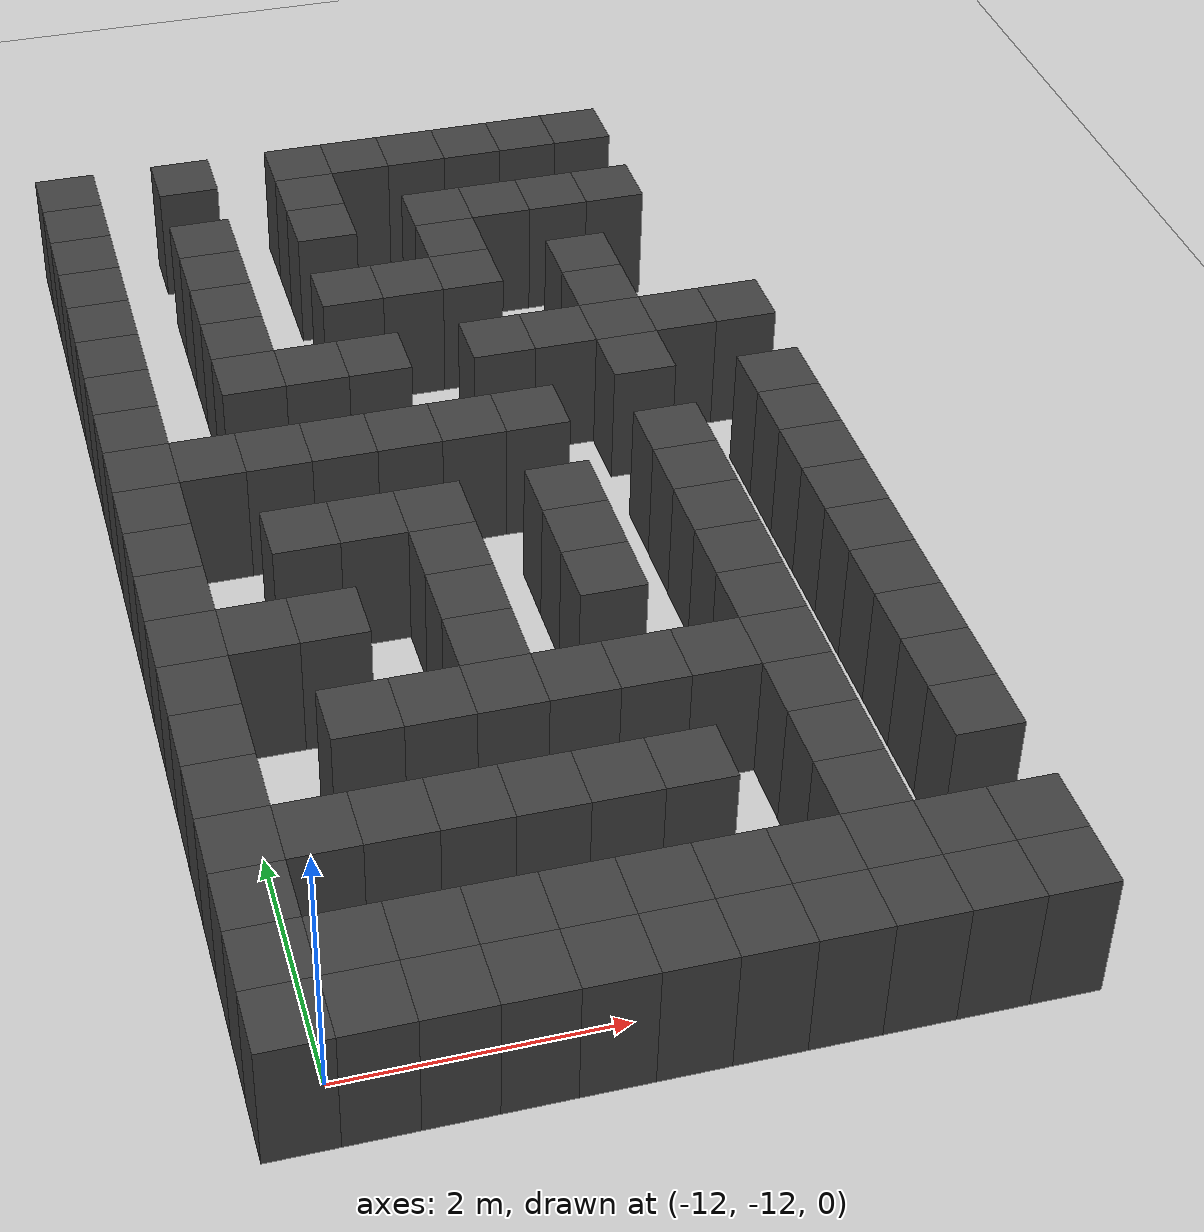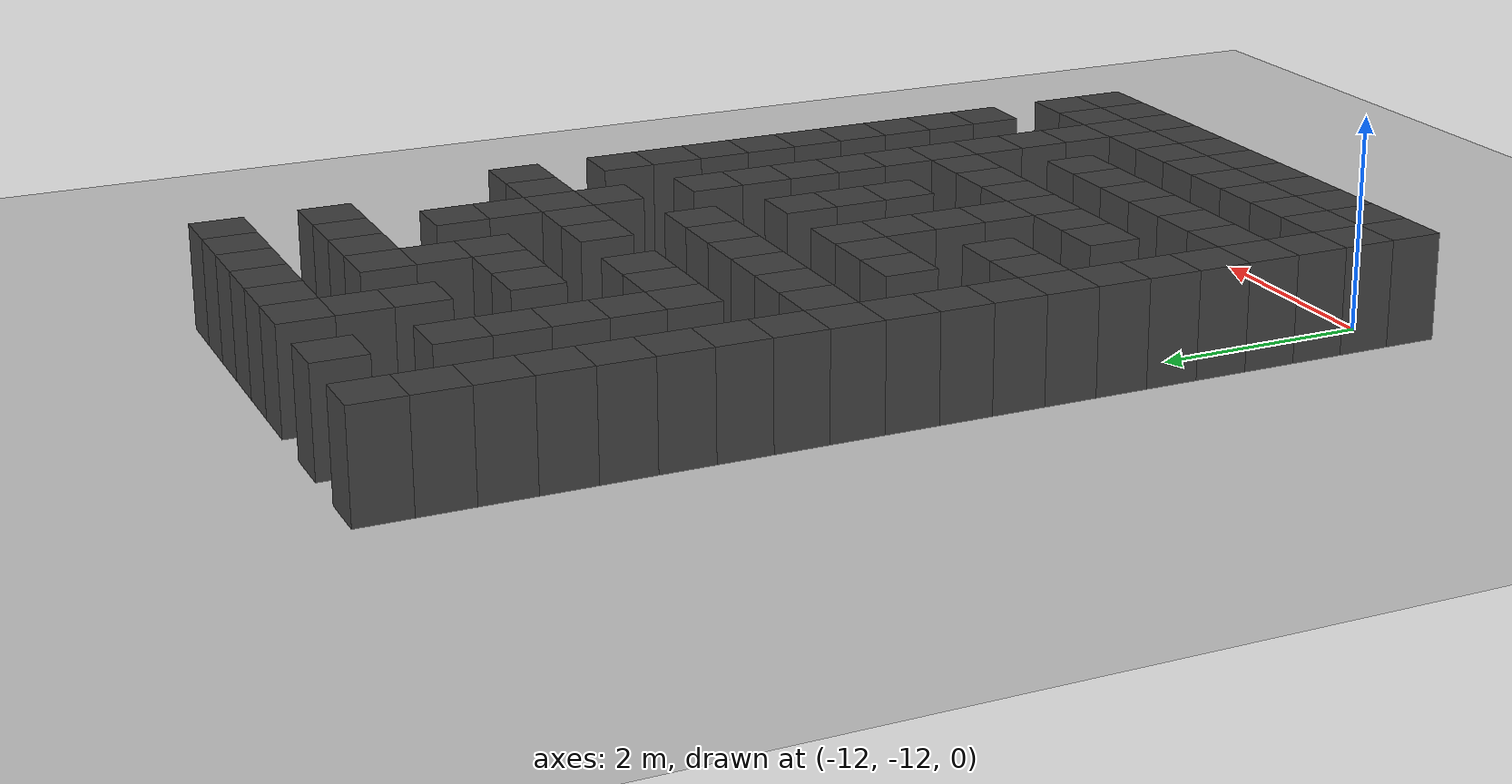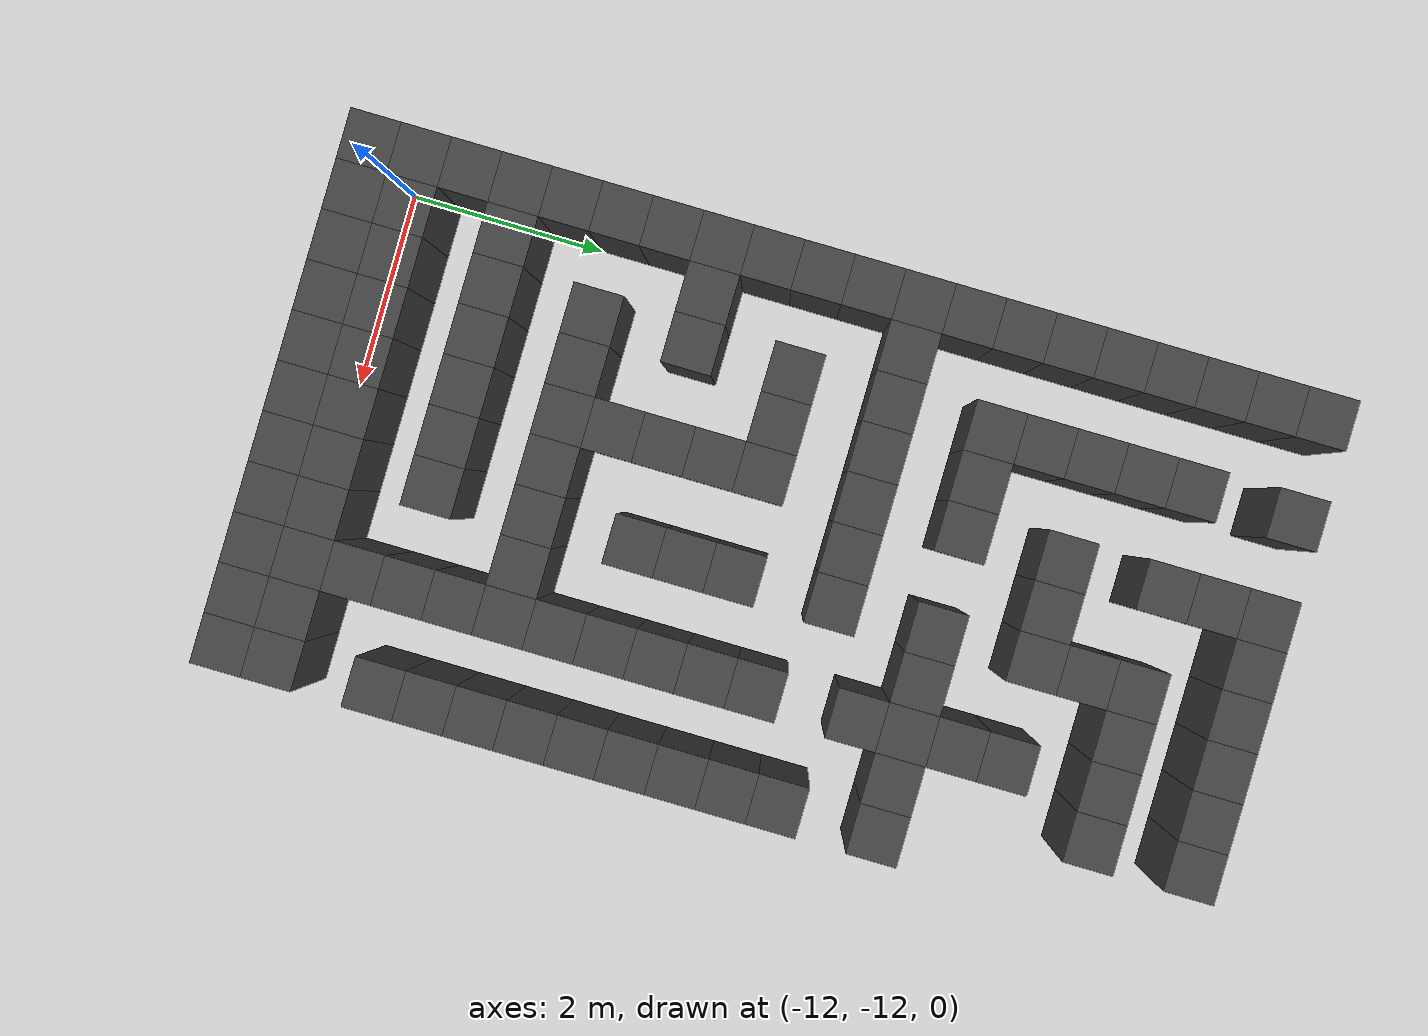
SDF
<sdf version="1.7">
 <world name="map_18914">
  <model name="ground_plane">
   <static>true</static>
   <link name="link">
    <collision name="collision">
     <geometry><plane><normal>0 0 1</normal><size>200 200</size></plane></geometry>
    </collision>
    <visual name="visual">
     <geometry><plane><normal>0 0 1</normal><size>200 200</size></plane></geometry>
     <material><ambient>0.8 0.8 0.8 1</ambient><diffuse>0.8 0.8 0.8 1</diffuse></material>
    </visual>
   </link>
  </model>
  <model name="maze_environment">
   <static>true</static>
   <link name="wall_767">
    <pose>-12.250 -2.750 0.500 0 0 0</pose>
    <collision name="col"><geometry><box><size>0.5 0.5 1.0</size></box></geometry></collision>
    <visual name="vis">
     <geometry><box><size>0.5 0.5 1.0</size></box></geometry>
     <material><ambient>0.15 0.15 0.15 1</ambient><diffuse>0.25 0.25 0.25 1</diffuse></material>
    </visual>
   </link>
   <link name="wall_768">
    <pose>-11.250 -2.750 0.500 0 0 0</pose>
    <collision name="col"><geometry><box><size>0.5 0.5 1.0</size></box></geometry></collision>
    <visual name="vis">
     <geometry><box><size>0.5 0.5 1.0</size></box></geometry>
     <material><ambient>0.15 0.15 0.15 1</ambient><diffuse>0.25 0.25 0.25 1</diffuse></material>
    </visual>
   </link>
   <link name="wall_769">
    <pose>-10.250 -2.750 0.500 0 0 0</pose>
    <collision name="col"><geometry><box><size>0.5 0.5 1.0</size></box></geometry></collision>
    <visual name="vis">
     <geometry><box><size>0.5 0.5 1.0</size></box></geometry>
     <material><ambient>0.15 0.15 0.15 1</ambient><diffuse>0.25 0.25 0.25 1</diffuse></material>
    </visual>
   </link>
   <link name="wall_770">
    <pose>-9.750 -2.750 0.500 0 0 0</pose>
    <collision name="col"><geometry><box><size>0.5 0.5 1.0</size></box></geometry></collision>
    <visual name="vis">
     <geometry><box><size>0.5 0.5 1.0</size></box></geometry>
     <material><ambient>0.15 0.15 0.15 1</ambient><diffuse>0.25 0.25 0.25 1</diffuse></material>
    </visual>
   </link>
   <link name="wall_771">
    <pose>-9.250 -2.750 0.500 0 0 0</pose>
    <collision name="col"><geometry><box><size>0.5 0.5 1.0</size></box></geometry></collision>
    <visual name="vis">
     <geometry><box><size>0.5 0.5 1.0</size></box></geometry>
     <material><ambient>0.15 0.15 0.15 1</ambient><diffuse>0.25 0.25 0.25 1</diffuse></material>
    </visual>
   </link>
   <link name="wall_772">
    <pose>-8.750 -2.750 0.500 0 0 0</pose>
    <collision name="col"><geometry><box><size>0.5 0.5 1.0</size></box></geometry></collision>
    <visual name="vis">
     <geometry><box><size>0.5 0.5 1.0</size></box></geometry>
     <material><ambient>0.15 0.15 0.15 1</ambient><diffuse>0.25 0.25 0.25 1</diffuse></material>
    </visual>
   </link>
   <link name="wall_773">
    <pose>-8.250 -2.750 0.500 0 0 0</pose>
    <collision name="col"><geometry><box><size>0.5 0.5 1.0</size></box></geometry></collision>
    <visual name="vis">
     <geometry><box><size>0.5 0.5 1.0</size></box></geometry>
     <material><ambient>0.15 0.15 0.15 1</ambient><diffuse>0.25 0.25 0.25 1</diffuse></material>
    </visual>
   </link>
   <link name="wall_774">
    <pose>-7.750 -2.750 0.500 0 0 0</pose>
    <collision name="col"><geometry><box><size>0.5 0.5 1.0</size></box></geometry></collision>
    <visual name="vis">
     <geometry><box><size>0.5 0.5 1.0</size></box></geometry>
     <material><ambient>0.15 0.15 0.15 1</ambient><diffuse>0.25 0.25 0.25 1</diffuse></material>
    </visual>
   </link>
   <link name="wall_805">
    <pose>-12.250 -3.250 0.500 0 0 0</pose>
    <collision name="col"><geometry><box><size>0.5 0.5 1.0</size></box></geometry></collision>
    <visual name="vis">
     <geometry><box><size>0.5 0.5 1.0</size></box></geometry>
     <material><ambient>0.15 0.15 0.15 1</ambient><diffuse>0.25 0.25 0.25 1</diffuse></material>
    </visual>
   </link>
   <link name="wall_806">
    <pose>-10.250 -3.250 0.500 0 0 0</pose>
    <collision name="col"><geometry><box><size>0.5 0.5 1.0</size></box></geometry></collision>
    <visual name="vis">
     <geometry><box><size>0.5 0.5 1.0</size></box></geometry>
     <material><ambient>0.15 0.15 0.15 1</ambient><diffuse>0.25 0.25 0.25 1</diffuse></material>
    </visual>
   </link>
   <link name="wall_819">
    <pose>-12.250 -3.750 0.500 0 0 0</pose>
    <collision name="col"><geometry><box><size>0.5 0.5 1.0</size></box></geometry></collision>
    <visual name="vis">
     <geometry><box><size>0.5 0.5 1.0</size></box></geometry>
     <material><ambient>0.15 0.15 0.15 1</ambient><diffuse>0.25 0.25 0.25 1</diffuse></material>
    </visual>
   </link>
   <link name="wall_820">
    <pose>-11.250 -3.750 0.500 0 0 0</pose>
    <collision name="col"><geometry><box><size>0.5 0.5 1.0</size></box></geometry></collision>
    <visual name="vis">
     <geometry><box><size>0.5 0.5 1.0</size></box></geometry>
     <material><ambient>0.15 0.15 0.15 1</ambient><diffuse>0.25 0.25 0.25 1</diffuse></material>
    </visual>
   </link>
   <link name="wall_821">
    <pose>-10.250 -3.750 0.500 0 0 0</pose>
    <collision name="col"><geometry><box><size>0.5 0.5 1.0</size></box></geometry></collision>
    <visual name="vis">
     <geometry><box><size>0.5 0.5 1.0</size></box></geometry>
     <material><ambient>0.15 0.15 0.15 1</ambient><diffuse>0.25 0.25 0.25 1</diffuse></material>
    </visual>
   </link>
   <link name="wall_822">
    <pose>-9.250 -3.750 0.500 0 0 0</pose>
    <collision name="col"><geometry><box><size>0.5 0.5 1.0</size></box></geometry></collision>
    <visual name="vis">
     <geometry><box><size>0.5 0.5 1.0</size></box></geometry>
     <material><ambient>0.15 0.15 0.15 1</ambient><diffuse>0.25 0.25 0.25 1</diffuse></material>
    </visual>
   </link>
   <link name="wall_823">
    <pose>-8.750 -3.750 0.500 0 0 0</pose>
    <collision name="col"><geometry><box><size>0.5 0.5 1.0</size></box></geometry></collision>
    <visual name="vis">
     <geometry><box><size>0.5 0.5 1.0</size></box></geometry>
     <material><ambient>0.15 0.15 0.15 1</ambient><diffuse>0.25 0.25 0.25 1</diffuse></material>
    </visual>
   </link>
   <link name="wall_824">
    <pose>-8.250 -3.750 0.500 0 0 0</pose>
    <collision name="col"><geometry><box><size>0.5 0.5 1.0</size></box></geometry></collision>
    <visual name="vis">
     <geometry><box><size>0.5 0.5 1.0</size></box></geometry>
     <material><ambient>0.15 0.15 0.15 1</ambient><diffuse>0.25 0.25 0.25 1</diffuse></material>
    </visual>
   </link>
   <link name="wall_825">
    <pose>-7.750 -3.750 0.500 0 0 0</pose>
    <collision name="col"><geometry><box><size>0.5 0.5 1.0</size></box></geometry></collision>
    <visual name="vis">
     <geometry><box><size>0.5 0.5 1.0</size></box></geometry>
     <material><ambient>0.15 0.15 0.15 1</ambient><diffuse>0.25 0.25 0.25 1</diffuse></material>
    </visual>
   </link>
   <link name="wall_856">
    <pose>-12.250 -4.250 0.500 0 0 0</pose>
    <collision name="col"><geometry><box><size>0.5 0.5 1.0</size></box></geometry></collision>
    <visual name="vis">
     <geometry><box><size>0.5 0.5 1.0</size></box></geometry>
     <material><ambient>0.15 0.15 0.15 1</ambient><diffuse>0.25 0.25 0.25 1</diffuse></material>
    </visual>
   </link>
   <link name="wall_857">
    <pose>-11.250 -4.250 0.500 0 0 0</pose>
    <collision name="col"><geometry><box><size>0.5 0.5 1.0</size></box></geometry></collision>
    <visual name="vis">
     <geometry><box><size>0.5 0.5 1.0</size></box></geometry>
     <material><ambient>0.15 0.15 0.15 1</ambient><diffuse>0.25 0.25 0.25 1</diffuse></material>
    </visual>
   </link>
   <link name="wall_858">
    <pose>-9.250 -4.250 0.500 0 0 0</pose>
    <collision name="col"><geometry><box><size>0.5 0.5 1.0</size></box></geometry></collision>
    <visual name="vis">
     <geometry><box><size>0.5 0.5 1.0</size></box></geometry>
     <material><ambient>0.15 0.15 0.15 1</ambient><diffuse>0.25 0.25 0.25 1</diffuse></material>
    </visual>
   </link>
   <link name="wall_870">
    <pose>-12.250 -4.750 0.500 0 0 0</pose>
    <collision name="col"><geometry><box><size>0.5 0.5 1.0</size></box></geometry></collision>
    <visual name="vis">
     <geometry><box><size>0.5 0.5 1.0</size></box></geometry>
     <material><ambient>0.15 0.15 0.15 1</ambient><diffuse>0.25 0.25 0.25 1</diffuse></material>
    </visual>
   </link>
   <link name="wall_871">
    <pose>-11.250 -4.750 0.500 0 0 0</pose>
    <collision name="col"><geometry><box><size>0.5 0.5 1.0</size></box></geometry></collision>
    <visual name="vis">
     <geometry><box><size>0.5 0.5 1.0</size></box></geometry>
     <material><ambient>0.15 0.15 0.15 1</ambient><diffuse>0.25 0.25 0.25 1</diffuse></material>
    </visual>
   </link>
   <link name="wall_872">
    <pose>-10.250 -4.750 0.500 0 0 0</pose>
    <collision name="col"><geometry><box><size>0.5 0.5 1.0</size></box></geometry></collision>
    <visual name="vis">
     <geometry><box><size>0.5 0.5 1.0</size></box></geometry>
     <material><ambient>0.15 0.15 0.15 1</ambient><diffuse>0.25 0.25 0.25 1</diffuse></material>
    </visual>
   </link>
   <link name="wall_873">
    <pose>-9.750 -4.750 0.500 0 0 0</pose>
    <collision name="col"><geometry><box><size>0.5 0.5 1.0</size></box></geometry></collision>
    <visual name="vis">
     <geometry><box><size>0.5 0.5 1.0</size></box></geometry>
     <material><ambient>0.15 0.15 0.15 1</ambient><diffuse>0.25 0.25 0.25 1</diffuse></material>
    </visual>
   </link>
   <link name="wall_874">
    <pose>-9.250 -4.750 0.500 0 0 0</pose>
    <collision name="col"><geometry><box><size>0.5 0.5 1.0</size></box></geometry></collision>
    <visual name="vis">
     <geometry><box><size>0.5 0.5 1.0</size></box></geometry>
     <material><ambient>0.15 0.15 0.15 1</ambient><diffuse>0.25 0.25 0.25 1</diffuse></material>
    </visual>
   </link>
   <link name="wall_875">
    <pose>-8.250 -4.750 0.500 0 0 0</pose>
    <collision name="col"><geometry><box><size>0.5 0.5 1.0</size></box></geometry></collision>
    <visual name="vis">
     <geometry><box><size>0.5 0.5 1.0</size></box></geometry>
     <material><ambient>0.15 0.15 0.15 1</ambient><diffuse>0.25 0.25 0.25 1</diffuse></material>
    </visual>
   </link>
   <link name="wall_903">
    <pose>-12.250 -5.250 0.500 0 0 0</pose>
    <collision name="col"><geometry><box><size>0.5 0.5 1.0</size></box></geometry></collision>
    <visual name="vis">
     <geometry><box><size>0.5 0.5 1.0</size></box></geometry>
     <material><ambient>0.15 0.15 0.15 1</ambient><diffuse>0.25 0.25 0.25 1</diffuse></material>
    </visual>
   </link>
   <link name="wall_904">
    <pose>-11.250 -5.250 0.500 0 0 0</pose>
    <collision name="col"><geometry><box><size>0.5 0.5 1.0</size></box></geometry></collision>
    <visual name="vis">
     <geometry><box><size>0.5 0.5 1.0</size></box></geometry>
     <material><ambient>0.15 0.15 0.15 1</ambient><diffuse>0.25 0.25 0.25 1</diffuse></material>
    </visual>
   </link>
   <link name="wall_905">
    <pose>-8.250 -5.250 0.500 0 0 0</pose>
    <collision name="col"><geometry><box><size>0.5 0.5 1.0</size></box></geometry></collision>
    <visual name="vis">
     <geometry><box><size>0.5 0.5 1.0</size></box></geometry>
     <material><ambient>0.15 0.15 0.15 1</ambient><diffuse>0.25 0.25 0.25 1</diffuse></material>
    </visual>
   </link>
   <link name="wall_919">
    <pose>-12.250 -5.750 0.500 0 0 0</pose>
    <collision name="col"><geometry><box><size>0.5 0.5 1.0</size></box></geometry></collision>
    <visual name="vis">
     <geometry><box><size>0.5 0.5 1.0</size></box></geometry>
     <material><ambient>0.15 0.15 0.15 1</ambient><diffuse>0.25 0.25 0.25 1</diffuse></material>
    </visual>
   </link>
   <link name="wall_920">
    <pose>-11.250 -5.750 0.500 0 0 0</pose>
    <collision name="col"><geometry><box><size>0.5 0.5 1.0</size></box></geometry></collision>
    <visual name="vis">
     <geometry><box><size>0.5 0.5 1.0</size></box></geometry>
     <material><ambient>0.15 0.15 0.15 1</ambient><diffuse>0.25 0.25 0.25 1</diffuse></material>
    </visual>
   </link>
   <link name="wall_921">
    <pose>-10.750 -5.750 0.500 0 0 0</pose>
    <collision name="col"><geometry><box><size>0.5 0.5 1.0</size></box></geometry></collision>
    <visual name="vis">
     <geometry><box><size>0.5 0.5 1.0</size></box></geometry>
     <material><ambient>0.15 0.15 0.15 1</ambient><diffuse>0.25 0.25 0.25 1</diffuse></material>
    </visual>
   </link>
   <link name="wall_922">
    <pose>-10.250 -5.750 0.500 0 0 0</pose>
    <collision name="col"><geometry><box><size>0.5 0.5 1.0</size></box></geometry></collision>
    <visual name="vis">
     <geometry><box><size>0.5 0.5 1.0</size></box></geometry>
     <material><ambient>0.15 0.15 0.15 1</ambient><diffuse>0.25 0.25 0.25 1</diffuse></material>
    </visual>
   </link>
   <link name="wall_923">
    <pose>-9.250 -5.750 0.500 0 0 0</pose>
    <collision name="col"><geometry><box><size>0.5 0.5 1.0</size></box></geometry></collision>
    <visual name="vis">
     <geometry><box><size>0.5 0.5 1.0</size></box></geometry>
     <material><ambient>0.15 0.15 0.15 1</ambient><diffuse>0.25 0.25 0.25 1</diffuse></material>
    </visual>
   </link>
   <link name="wall_924">
    <pose>-8.750 -5.750 0.500 0 0 0</pose>
    <collision name="col"><geometry><box><size>0.5 0.5 1.0</size></box></geometry></collision>
    <visual name="vis">
     <geometry><box><size>0.5 0.5 1.0</size></box></geometry>
     <material><ambient>0.15 0.15 0.15 1</ambient><diffuse>0.25 0.25 0.25 1</diffuse></material>
    </visual>
   </link>
   <link name="wall_925">
    <pose>-8.250 -5.750 0.500 0 0 0</pose>
    <collision name="col"><geometry><box><size>0.5 0.5 1.0</size></box></geometry></collision>
    <visual name="vis">
     <geometry><box><size>0.5 0.5 1.0</size></box></geometry>
     <material><ambient>0.15 0.15 0.15 1</ambient><diffuse>0.25 0.25 0.25 1</diffuse></material>
    </visual>
   </link>
   <link name="wall_926">
    <pose>-7.750 -5.750 0.500 0 0 0</pose>
    <collision name="col"><geometry><box><size>0.5 0.5 1.0</size></box></geometry></collision>
    <visual name="vis">
     <geometry><box><size>0.5 0.5 1.0</size></box></geometry>
     <material><ambient>0.15 0.15 0.15 1</ambient><diffuse>0.25 0.25 0.25 1</diffuse></material>
    </visual>
   </link>
   <link name="wall_927">
    <pose>-7.250 -5.750 0.500 0 0 0</pose>
    <collision name="col"><geometry><box><size>0.5 0.5 1.0</size></box></geometry></collision>
    <visual name="vis">
     <geometry><box><size>0.5 0.5 1.0</size></box></geometry>
     <material><ambient>0.15 0.15 0.15 1</ambient><diffuse>0.25 0.25 0.25 1</diffuse></material>
    </visual>
   </link>
   <link name="wall_952">
    <pose>-12.250 -6.250 0.500 0 0 0</pose>
    <collision name="col"><geometry><box><size>0.5 0.5 1.0</size></box></geometry></collision>
    <visual name="vis">
     <geometry><box><size>0.5 0.5 1.0</size></box></geometry>
     <material><ambient>0.15 0.15 0.15 1</ambient><diffuse>0.25 0.25 0.25 1</diffuse></material>
    </visual>
   </link>
   <link name="wall_953">
    <pose>-8.250 -6.250 0.500 0 0 0</pose>
    <collision name="col"><geometry><box><size>0.5 0.5 1.0</size></box></geometry></collision>
    <visual name="vis">
     <geometry><box><size>0.5 0.5 1.0</size></box></geometry>
     <material><ambient>0.15 0.15 0.15 1</ambient><diffuse>0.25 0.25 0.25 1</diffuse></material>
    </visual>
   </link>
   <link name="wall_965">
    <pose>-12.250 -6.750 0.500 0 0 0</pose>
    <collision name="col"><geometry><box><size>0.5 0.5 1.0</size></box></geometry></collision>
    <visual name="vis">
     <geometry><box><size>0.5 0.5 1.0</size></box></geometry>
     <material><ambient>0.15 0.15 0.15 1</ambient><diffuse>0.25 0.25 0.25 1</diffuse></material>
    </visual>
   </link>
   <link name="wall_966">
    <pose>-11.750 -6.750 0.500 0 0 0</pose>
    <collision name="col"><geometry><box><size>0.5 0.5 1.0</size></box></geometry></collision>
    <visual name="vis">
     <geometry><box><size>0.5 0.5 1.0</size></box></geometry>
     <material><ambient>0.15 0.15 0.15 1</ambient><diffuse>0.25 0.25 0.25 1</diffuse></material>
    </visual>
   </link>
   <link name="wall_967">
    <pose>-11.250 -6.750 0.500 0 0 0</pose>
    <collision name="col"><geometry><box><size>0.5 0.5 1.0</size></box></geometry></collision>
    <visual name="vis">
     <geometry><box><size>0.5 0.5 1.0</size></box></geometry>
     <material><ambient>0.15 0.15 0.15 1</ambient><diffuse>0.25 0.25 0.25 1</diffuse></material>
    </visual>
   </link>
   <link name="wall_968">
    <pose>-10.750 -6.750 0.500 0 0 0</pose>
    <collision name="col"><geometry><box><size>0.5 0.5 1.0</size></box></geometry></collision>
    <visual name="vis">
     <geometry><box><size>0.5 0.5 1.0</size></box></geometry>
     <material><ambient>0.15 0.15 0.15 1</ambient><diffuse>0.25 0.25 0.25 1</diffuse></material>
    </visual>
   </link>
   <link name="wall_969">
    <pose>-10.250 -6.750 0.500 0 0 0</pose>
    <collision name="col"><geometry><box><size>0.5 0.5 1.0</size></box></geometry></collision>
    <visual name="vis">
     <geometry><box><size>0.5 0.5 1.0</size></box></geometry>
     <material><ambient>0.15 0.15 0.15 1</ambient><diffuse>0.25 0.25 0.25 1</diffuse></material>
    </visual>
   </link>
   <link name="wall_970">
    <pose>-9.750 -6.750 0.500 0 0 0</pose>
    <collision name="col"><geometry><box><size>0.5 0.5 1.0</size></box></geometry></collision>
    <visual name="vis">
     <geometry><box><size>0.5 0.5 1.0</size></box></geometry>
     <material><ambient>0.15 0.15 0.15 1</ambient><diffuse>0.25 0.25 0.25 1</diffuse></material>
    </visual>
   </link>
   <link name="wall_971">
    <pose>-9.250 -6.750 0.500 0 0 0</pose>
    <collision name="col"><geometry><box><size>0.5 0.5 1.0</size></box></geometry></collision>
    <visual name="vis">
     <geometry><box><size>0.5 0.5 1.0</size></box></geometry>
     <material><ambient>0.15 0.15 0.15 1</ambient><diffuse>0.25 0.25 0.25 1</diffuse></material>
    </visual>
   </link>
   <link name="wall_972">
    <pose>-7.250 -6.750 0.500 0 0 0</pose>
    <collision name="col"><geometry><box><size>0.5 0.5 1.0</size></box></geometry></collision>
    <visual name="vis">
     <geometry><box><size>0.5 0.5 1.0</size></box></geometry>
     <material><ambient>0.15 0.15 0.15 1</ambient><diffuse>0.25 0.25 0.25 1</diffuse></material>
    </visual>
   </link>
   <link name="wall_1004">
    <pose>-12.250 -7.250 0.500 0 0 0</pose>
    <collision name="col"><geometry><box><size>0.5 0.5 1.0</size></box></geometry></collision>
    <visual name="vis">
     <geometry><box><size>0.5 0.5 1.0</size></box></geometry>
     <material><ambient>0.15 0.15 0.15 1</ambient><diffuse>0.25 0.25 0.25 1</diffuse></material>
    </visual>
   </link>
   <link name="wall_1005">
    <pose>-8.250 -7.250 0.500 0 0 0</pose>
    <collision name="col"><geometry><box><size>0.5 0.5 1.0</size></box></geometry></collision>
    <visual name="vis">
     <geometry><box><size>0.5 0.5 1.0</size></box></geometry>
     <material><ambient>0.15 0.15 0.15 1</ambient><diffuse>0.25 0.25 0.25 1</diffuse></material>
    </visual>
   </link>
   <link name="wall_1006">
    <pose>-7.250 -7.250 0.500 0 0 0</pose>
    <collision name="col"><geometry><box><size>0.5 0.5 1.0</size></box></geometry></collision>
    <visual name="vis">
     <geometry><box><size>0.5 0.5 1.0</size></box></geometry>
     <material><ambient>0.15 0.15 0.15 1</ambient><diffuse>0.25 0.25 0.25 1</diffuse></material>
    </visual>
   </link>
   <link name="wall_1015">
    <pose>-12.250 -7.750 0.500 0 0 0</pose>
    <collision name="col"><geometry><box><size>0.5 0.5 1.0</size></box></geometry></collision>
    <visual name="vis">
     <geometry><box><size>0.5 0.5 1.0</size></box></geometry>
     <material><ambient>0.15 0.15 0.15 1</ambient><diffuse>0.25 0.25 0.25 1</diffuse></material>
    </visual>
   </link>
   <link name="wall_1016">
    <pose>-11.250 -7.750 0.500 0 0 0</pose>
    <collision name="col"><geometry><box><size>0.5 0.5 1.0</size></box></geometry></collision>
    <visual name="vis">
     <geometry><box><size>0.5 0.5 1.0</size></box></geometry>
     <material><ambient>0.15 0.15 0.15 1</ambient><diffuse>0.25 0.25 0.25 1</diffuse></material>
    </visual>
   </link>
   <link name="wall_1017">
    <pose>-10.750 -7.750 0.500 0 0 0</pose>
    <collision name="col"><geometry><box><size>0.5 0.5 1.0</size></box></geometry></collision>
    <visual name="vis">
     <geometry><box><size>0.5 0.5 1.0</size></box></geometry>
     <material><ambient>0.15 0.15 0.15 1</ambient><diffuse>0.25 0.25 0.25 1</diffuse></material>
    </visual>
   </link>
   <link name="wall_1018">
    <pose>-10.250 -7.750 0.500 0 0 0</pose>
    <collision name="col"><geometry><box><size>0.5 0.5 1.0</size></box></geometry></collision>
    <visual name="vis">
     <geometry><box><size>0.5 0.5 1.0</size></box></geometry>
     <material><ambient>0.15 0.15 0.15 1</ambient><diffuse>0.25 0.25 0.25 1</diffuse></material>
    </visual>
   </link>
   <link name="wall_1019">
    <pose>-9.250 -7.750 0.500 0 0 0</pose>
    <collision name="col"><geometry><box><size>0.5 0.5 1.0</size></box></geometry></collision>
    <visual name="vis">
     <geometry><box><size>0.5 0.5 1.0</size></box></geometry>
     <material><ambient>0.15 0.15 0.15 1</ambient><diffuse>0.25 0.25 0.25 1</diffuse></material>
    </visual>
   </link>
   <link name="wall_1020">
    <pose>-8.250 -7.750 0.500 0 0 0</pose>
    <collision name="col"><geometry><box><size>0.5 0.5 1.0</size></box></geometry></collision>
    <visual name="vis">
     <geometry><box><size>0.5 0.5 1.0</size></box></geometry>
     <material><ambient>0.15 0.15 0.15 1</ambient><diffuse>0.25 0.25 0.25 1</diffuse></material>
    </visual>
   </link>
   <link name="wall_1021">
    <pose>-7.250 -7.750 0.500 0 0 0</pose>
    <collision name="col"><geometry><box><size>0.5 0.5 1.0</size></box></geometry></collision>
    <visual name="vis">
     <geometry><box><size>0.5 0.5 1.0</size></box></geometry>
     <material><ambient>0.15 0.15 0.15 1</ambient><diffuse>0.25 0.25 0.25 1</diffuse></material>
    </visual>
   </link>
   <link name="wall_1052">
    <pose>-12.250 -8.250 0.500 0 0 0</pose>
    <collision name="col"><geometry><box><size>0.5 0.5 1.0</size></box></geometry></collision>
    <visual name="vis">
     <geometry><box><size>0.5 0.5 1.0</size></box></geometry>
     <material><ambient>0.15 0.15 0.15 1</ambient><diffuse>0.25 0.25 0.25 1</diffuse></material>
    </visual>
   </link>
   <link name="wall_1053">
    <pose>-10.250 -8.250 0.500 0 0 0</pose>
    <collision name="col"><geometry><box><size>0.5 0.5 1.0</size></box></geometry></collision>
    <visual name="vis">
     <geometry><box><size>0.5 0.5 1.0</size></box></geometry>
     <material><ambient>0.15 0.15 0.15 1</ambient><diffuse>0.25 0.25 0.25 1</diffuse></material>
    </visual>
   </link>
   <link name="wall_1054">
    <pose>-9.250 -8.250 0.500 0 0 0</pose>
    <collision name="col"><geometry><box><size>0.5 0.5 1.0</size></box></geometry></collision>
    <visual name="vis">
     <geometry><box><size>0.5 0.5 1.0</size></box></geometry>
     <material><ambient>0.15 0.15 0.15 1</ambient><diffuse>0.25 0.25 0.25 1</diffuse></material>
    </visual>
   </link>
   <link name="wall_1055">
    <pose>-8.250 -8.250 0.500 0 0 0</pose>
    <collision name="col"><geometry><box><size>0.5 0.5 1.0</size></box></geometry></collision>
    <visual name="vis">
     <geometry><box><size>0.5 0.5 1.0</size></box></geometry>
     <material><ambient>0.15 0.15 0.15 1</ambient><diffuse>0.25 0.25 0.25 1</diffuse></material>
    </visual>
   </link>
   <link name="wall_1056">
    <pose>-7.250 -8.250 0.500 0 0 0</pose>
    <collision name="col"><geometry><box><size>0.5 0.5 1.0</size></box></geometry></collision>
    <visual name="vis">
     <geometry><box><size>0.5 0.5 1.0</size></box></geometry>
     <material><ambient>0.15 0.15 0.15 1</ambient><diffuse>0.25 0.25 0.25 1</diffuse></material>
    </visual>
   </link>
   <link name="wall_1067">
    <pose>-12.250 -8.750 0.500 0 0 0</pose>
    <collision name="col"><geometry><box><size>0.5 0.5 1.0</size></box></geometry></collision>
    <visual name="vis">
     <geometry><box><size>0.5 0.5 1.0</size></box></geometry>
     <material><ambient>0.15 0.15 0.15 1</ambient><diffuse>0.25 0.25 0.25 1</diffuse></material>
    </visual>
   </link>
   <link name="wall_1068">
    <pose>-11.750 -8.750 0.500 0 0 0</pose>
    <collision name="col"><geometry><box><size>0.5 0.5 1.0</size></box></geometry></collision>
    <visual name="vis">
     <geometry><box><size>0.5 0.5 1.0</size></box></geometry>
     <material><ambient>0.15 0.15 0.15 1</ambient><diffuse>0.25 0.25 0.25 1</diffuse></material>
    </visual>
   </link>
   <link name="wall_1069">
    <pose>-11.250 -8.750 0.500 0 0 0</pose>
    <collision name="col"><geometry><box><size>0.5 0.5 1.0</size></box></geometry></collision>
    <visual name="vis">
     <geometry><box><size>0.5 0.5 1.0</size></box></geometry>
     <material><ambient>0.15 0.15 0.15 1</ambient><diffuse>0.25 0.25 0.25 1</diffuse></material>
    </visual>
   </link>
   <link name="wall_1070">
    <pose>-10.250 -8.750 0.500 0 0 0</pose>
    <collision name="col"><geometry><box><size>0.5 0.5 1.0</size></box></geometry></collision>
    <visual name="vis">
     <geometry><box><size>0.5 0.5 1.0</size></box></geometry>
     <material><ambient>0.15 0.15 0.15 1</ambient><diffuse>0.25 0.25 0.25 1</diffuse></material>
    </visual>
   </link>
   <link name="wall_1071">
    <pose>-9.250 -8.750 0.500 0 0 0</pose>
    <collision name="col"><geometry><box><size>0.5 0.5 1.0</size></box></geometry></collision>
    <visual name="vis">
     <geometry><box><size>0.5 0.5 1.0</size></box></geometry>
     <material><ambient>0.15 0.15 0.15 1</ambient><diffuse>0.25 0.25 0.25 1</diffuse></material>
    </visual>
   </link>
   <link name="wall_1072">
    <pose>-8.250 -8.750 0.500 0 0 0</pose>
    <collision name="col"><geometry><box><size>0.5 0.5 1.0</size></box></geometry></collision>
    <visual name="vis">
     <geometry><box><size>0.5 0.5 1.0</size></box></geometry>
     <material><ambient>0.15 0.15 0.15 1</ambient><diffuse>0.25 0.25 0.25 1</diffuse></material>
    </visual>
   </link>
   <link name="wall_1073">
    <pose>-7.250 -8.750 0.500 0 0 0</pose>
    <collision name="col"><geometry><box><size>0.5 0.5 1.0</size></box></geometry></collision>
    <visual name="vis">
     <geometry><box><size>0.5 0.5 1.0</size></box></geometry>
     <material><ambient>0.15 0.15 0.15 1</ambient><diffuse>0.25 0.25 0.25 1</diffuse></material>
    </visual>
   </link>
   <link name="wall_1102">
    <pose>-12.250 -9.250 0.500 0 0 0</pose>
    <collision name="col"><geometry><box><size>0.5 0.5 1.0</size></box></geometry></collision>
    <visual name="vis">
     <geometry><box><size>0.5 0.5 1.0</size></box></geometry>
     <material><ambient>0.15 0.15 0.15 1</ambient><diffuse>0.25 0.25 0.25 1</diffuse></material>
    </visual>
   </link>
   <link name="wall_1103">
    <pose>-10.250 -9.250 0.500 0 0 0</pose>
    <collision name="col"><geometry><box><size>0.5 0.5 1.0</size></box></geometry></collision>
    <visual name="vis">
     <geometry><box><size>0.5 0.5 1.0</size></box></geometry>
     <material><ambient>0.15 0.15 0.15 1</ambient><diffuse>0.25 0.25 0.25 1</diffuse></material>
    </visual>
   </link>
   <link name="wall_1104">
    <pose>-8.250 -9.250 0.500 0 0 0</pose>
    <collision name="col"><geometry><box><size>0.5 0.5 1.0</size></box></geometry></collision>
    <visual name="vis">
     <geometry><box><size>0.5 0.5 1.0</size></box></geometry>
     <material><ambient>0.15 0.15 0.15 1</ambient><diffuse>0.25 0.25 0.25 1</diffuse></material>
    </visual>
   </link>
   <link name="wall_1105">
    <pose>-7.250 -9.250 0.500 0 0 0</pose>
    <collision name="col"><geometry><box><size>0.5 0.5 1.0</size></box></geometry></collision>
    <visual name="vis">
     <geometry><box><size>0.5 0.5 1.0</size></box></geometry>
     <material><ambient>0.15 0.15 0.15 1</ambient><diffuse>0.25 0.25 0.25 1</diffuse></material>
    </visual>
   </link>
   <link name="wall_1118">
    <pose>-12.250 -9.750 0.500 0 0 0</pose>
    <collision name="col"><geometry><box><size>0.5 0.5 1.0</size></box></geometry></collision>
    <visual name="vis">
     <geometry><box><size>0.5 0.5 1.0</size></box></geometry>
     <material><ambient>0.15 0.15 0.15 1</ambient><diffuse>0.25 0.25 0.25 1</diffuse></material>
    </visual>
   </link>
   <link name="wall_1119">
    <pose>-11.250 -9.750 0.500 0 0 0</pose>
    <collision name="col"><geometry><box><size>0.5 0.5 1.0</size></box></geometry></collision>
    <visual name="vis">
     <geometry><box><size>0.5 0.5 1.0</size></box></geometry>
     <material><ambient>0.15 0.15 0.15 1</ambient><diffuse>0.25 0.25 0.25 1</diffuse></material>
    </visual>
   </link>
   <link name="wall_1120">
    <pose>-10.750 -9.750 0.500 0 0 0</pose>
    <collision name="col"><geometry><box><size>0.5 0.5 1.0</size></box></geometry></collision>
    <visual name="vis">
     <geometry><box><size>0.5 0.5 1.0</size></box></geometry>
     <material><ambient>0.15 0.15 0.15 1</ambient><diffuse>0.25 0.25 0.25 1</diffuse></material>
    </visual>
   </link>
   <link name="wall_1121">
    <pose>-10.250 -9.750 0.500 0 0 0</pose>
    <collision name="col"><geometry><box><size>0.5 0.5 1.0</size></box></geometry></collision>
    <visual name="vis">
     <geometry><box><size>0.5 0.5 1.0</size></box></geometry>
     <material><ambient>0.15 0.15 0.15 1</ambient><diffuse>0.25 0.25 0.25 1</diffuse></material>
    </visual>
   </link>
   <link name="wall_1122">
    <pose>-9.750 -9.750 0.500 0 0 0</pose>
    <collision name="col"><geometry><box><size>0.5 0.5 1.0</size></box></geometry></collision>
    <visual name="vis">
     <geometry><box><size>0.5 0.5 1.0</size></box></geometry>
     <material><ambient>0.15 0.15 0.15 1</ambient><diffuse>0.25 0.25 0.25 1</diffuse></material>
    </visual>
   </link>
   <link name="wall_1123">
    <pose>-9.250 -9.750 0.500 0 0 0</pose>
    <collision name="col"><geometry><box><size>0.5 0.5 1.0</size></box></geometry></collision>
    <visual name="vis">
     <geometry><box><size>0.5 0.5 1.0</size></box></geometry>
     <material><ambient>0.15 0.15 0.15 1</ambient><diffuse>0.25 0.25 0.25 1</diffuse></material>
    </visual>
   </link>
   <link name="wall_1124">
    <pose>-8.750 -9.750 0.500 0 0 0</pose>
    <collision name="col"><geometry><box><size>0.5 0.5 1.0</size></box></geometry></collision>
    <visual name="vis">
     <geometry><box><size>0.5 0.5 1.0</size></box></geometry>
     <material><ambient>0.15 0.15 0.15 1</ambient><diffuse>0.25 0.25 0.25 1</diffuse></material>
    </visual>
   </link>
   <link name="wall_1125">
    <pose>-8.250 -9.750 0.500 0 0 0</pose>
    <collision name="col"><geometry><box><size>0.5 0.5 1.0</size></box></geometry></collision>
    <visual name="vis">
     <geometry><box><size>0.5 0.5 1.0</size></box></geometry>
     <material><ambient>0.15 0.15 0.15 1</ambient><diffuse>0.25 0.25 0.25 1</diffuse></material>
    </visual>
   </link>
   <link name="wall_1126">
    <pose>-7.250 -9.750 0.500 0 0 0</pose>
    <collision name="col"><geometry><box><size>0.5 0.5 1.0</size></box></geometry></collision>
    <visual name="vis">
     <geometry><box><size>0.5 0.5 1.0</size></box></geometry>
     <material><ambient>0.15 0.15 0.15 1</ambient><diffuse>0.25 0.25 0.25 1</diffuse></material>
    </visual>
   </link>
   <link name="wall_1153">
    <pose>-12.250 -10.250 0.500 0 0 0</pose>
    <collision name="col"><geometry><box><size>0.5 0.5 1.0</size></box></geometry></collision>
    <visual name="vis">
     <geometry><box><size>0.5 0.5 1.0</size></box></geometry>
     <material><ambient>0.15 0.15 0.15 1</ambient><diffuse>0.25 0.25 0.25 1</diffuse></material>
    </visual>
   </link>
   <link name="wall_1154">
    <pose>-8.250 -10.250 0.500 0 0 0</pose>
    <collision name="col"><geometry><box><size>0.5 0.5 1.0</size></box></geometry></collision>
    <visual name="vis">
     <geometry><box><size>0.5 0.5 1.0</size></box></geometry>
     <material><ambient>0.15 0.15 0.15 1</ambient><diffuse>0.25 0.25 0.25 1</diffuse></material>
    </visual>
   </link>
   <link name="wall_1155">
    <pose>-7.250 -10.250 0.500 0 0 0</pose>
    <collision name="col"><geometry><box><size>0.5 0.5 1.0</size></box></geometry></collision>
    <visual name="vis">
     <geometry><box><size>0.5 0.5 1.0</size></box></geometry>
     <material><ambient>0.15 0.15 0.15 1</ambient><diffuse>0.25 0.25 0.25 1</diffuse></material>
    </visual>
   </link>
   <link name="wall_1168">
    <pose>-12.250 -10.750 0.500 0 0 0</pose>
    <collision name="col"><geometry><box><size>0.5 0.5 1.0</size></box></geometry></collision>
    <visual name="vis">
     <geometry><box><size>0.5 0.5 1.0</size></box></geometry>
     <material><ambient>0.15 0.15 0.15 1</ambient><diffuse>0.25 0.25 0.25 1</diffuse></material>
    </visual>
   </link>
   <link name="wall_1169">
    <pose>-11.750 -10.750 0.500 0 0 0</pose>
    <collision name="col"><geometry><box><size>0.5 0.5 1.0</size></box></geometry></collision>
    <visual name="vis">
     <geometry><box><size>0.5 0.5 1.0</size></box></geometry>
     <material><ambient>0.15 0.15 0.15 1</ambient><diffuse>0.25 0.25 0.25 1</diffuse></material>
    </visual>
   </link>
   <link name="wall_1170">
    <pose>-11.250 -10.750 0.500 0 0 0</pose>
    <collision name="col"><geometry><box><size>0.5 0.5 1.0</size></box></geometry></collision>
    <visual name="vis">
     <geometry><box><size>0.5 0.5 1.0</size></box></geometry>
     <material><ambient>0.15 0.15 0.15 1</ambient><diffuse>0.25 0.25 0.25 1</diffuse></material>
    </visual>
   </link>
   <link name="wall_1171">
    <pose>-10.750 -10.750 0.500 0 0 0</pose>
    <collision name="col"><geometry><box><size>0.5 0.5 1.0</size></box></geometry></collision>
    <visual name="vis">
     <geometry><box><size>0.5 0.5 1.0</size></box></geometry>
     <material><ambient>0.15 0.15 0.15 1</ambient><diffuse>0.25 0.25 0.25 1</diffuse></material>
    </visual>
   </link>
   <link name="wall_1172">
    <pose>-10.250 -10.750 0.500 0 0 0</pose>
    <collision name="col"><geometry><box><size>0.5 0.5 1.0</size></box></geometry></collision>
    <visual name="vis">
     <geometry><box><size>0.5 0.5 1.0</size></box></geometry>
     <material><ambient>0.15 0.15 0.15 1</ambient><diffuse>0.25 0.25 0.25 1</diffuse></material>
    </visual>
   </link>
   <link name="wall_1173">
    <pose>-9.750 -10.750 0.500 0 0 0</pose>
    <collision name="col"><geometry><box><size>0.5 0.5 1.0</size></box></geometry></collision>
    <visual name="vis">
     <geometry><box><size>0.5 0.5 1.0</size></box></geometry>
     <material><ambient>0.15 0.15 0.15 1</ambient><diffuse>0.25 0.25 0.25 1</diffuse></material>
    </visual>
   </link>
   <link name="wall_1174">
    <pose>-9.250 -10.750 0.500 0 0 0</pose>
    <collision name="col"><geometry><box><size>0.5 0.5 1.0</size></box></geometry></collision>
    <visual name="vis">
     <geometry><box><size>0.5 0.5 1.0</size></box></geometry>
     <material><ambient>0.15 0.15 0.15 1</ambient><diffuse>0.25 0.25 0.25 1</diffuse></material>
    </visual>
   </link>
   <link name="wall_1175">
    <pose>-8.250 -10.750 0.500 0 0 0</pose>
    <collision name="col"><geometry><box><size>0.5 0.5 1.0</size></box></geometry></collision>
    <visual name="vis">
     <geometry><box><size>0.5 0.5 1.0</size></box></geometry>
     <material><ambient>0.15 0.15 0.15 1</ambient><diffuse>0.25 0.25 0.25 1</diffuse></material>
    </visual>
   </link>
   <link name="wall_1176">
    <pose>-7.250 -10.750 0.500 0 0 0</pose>
    <collision name="col"><geometry><box><size>0.5 0.5 1.0</size></box></geometry></collision>
    <visual name="vis">
     <geometry><box><size>0.5 0.5 1.0</size></box></geometry>
     <material><ambient>0.15 0.15 0.15 1</ambient><diffuse>0.25 0.25 0.25 1</diffuse></material>
    </visual>
   </link>
   <link name="wall_1207">
    <pose>-12.250 -11.250 0.500 0 0 0</pose>
    <collision name="col"><geometry><box><size>0.5 0.5 1.0</size></box></geometry></collision>
    <visual name="vis">
     <geometry><box><size>0.5 0.5 1.0</size></box></geometry>
     <material><ambient>0.15 0.15 0.15 1</ambient><diffuse>0.25 0.25 0.25 1</diffuse></material>
    </visual>
   </link>
   <link name="wall_1208">
    <pose>-8.250 -11.250 0.500 0 0 0</pose>
    <collision name="col"><geometry><box><size>0.5 0.5 1.0</size></box></geometry></collision>
    <visual name="vis">
     <geometry><box><size>0.5 0.5 1.0</size></box></geometry>
     <material><ambient>0.15 0.15 0.15 1</ambient><diffuse>0.25 0.25 0.25 1</diffuse></material>
    </visual>
   </link>
   <link name="wall_1213">
    <pose>-12.250 -11.750 0.500 0 0 0</pose>
    <collision name="col"><geometry><box><size>0.5 0.5 1.0</size></box></geometry></collision>
    <visual name="vis">
     <geometry><box><size>0.5 0.5 1.0</size></box></geometry>
     <material><ambient>0.15 0.15 0.15 1</ambient><diffuse>0.25 0.25 0.25 1</diffuse></material>
    </visual>
   </link>
   <link name="wall_1214">
    <pose>-11.750 -11.750 0.500 0 0 0</pose>
    <collision name="col"><geometry><box><size>0.5 0.5 1.0</size></box></geometry></collision>
    <visual name="vis">
     <geometry><box><size>0.5 0.5 1.0</size></box></geometry>
     <material><ambient>0.15 0.15 0.15 1</ambient><diffuse>0.25 0.25 0.25 1</diffuse></material>
    </visual>
   </link>
   <link name="wall_1215">
    <pose>-11.250 -11.750 0.500 0 0 0</pose>
    <collision name="col"><geometry><box><size>0.5 0.5 1.0</size></box></geometry></collision>
    <visual name="vis">
     <geometry><box><size>0.5 0.5 1.0</size></box></geometry>
     <material><ambient>0.15 0.15 0.15 1</ambient><diffuse>0.25 0.25 0.25 1</diffuse></material>
    </visual>
   </link>
   <link name="wall_1216">
    <pose>-10.750 -11.750 0.500 0 0 0</pose>
    <collision name="col"><geometry><box><size>0.5 0.5 1.0</size></box></geometry></collision>
    <visual name="vis">
     <geometry><box><size>0.5 0.5 1.0</size></box></geometry>
     <material><ambient>0.15 0.15 0.15 1</ambient><diffuse>0.25 0.25 0.25 1</diffuse></material>
    </visual>
   </link>
   <link name="wall_1217">
    <pose>-10.250 -11.750 0.500 0 0 0</pose>
    <collision name="col"><geometry><box><size>0.5 0.5 1.0</size></box></geometry></collision>
    <visual name="vis">
     <geometry><box><size>0.5 0.5 1.0</size></box></geometry>
     <material><ambient>0.15 0.15 0.15 1</ambient><diffuse>0.25 0.25 0.25 1</diffuse></material>
    </visual>
   </link>
   <link name="wall_1218">
    <pose>-9.750 -11.750 0.500 0 0 0</pose>
    <collision name="col"><geometry><box><size>0.5 0.5 1.0</size></box></geometry></collision>
    <visual name="vis">
     <geometry><box><size>0.5 0.5 1.0</size></box></geometry>
     <material><ambient>0.15 0.15 0.15 1</ambient><diffuse>0.25 0.25 0.25 1</diffuse></material>
    </visual>
   </link>
   <link name="wall_1219">
    <pose>-9.250 -11.750 0.500 0 0 0</pose>
    <collision name="col"><geometry><box><size>0.5 0.5 1.0</size></box></geometry></collision>
    <visual name="vis">
     <geometry><box><size>0.5 0.5 1.0</size></box></geometry>
     <material><ambient>0.15 0.15 0.15 1</ambient><diffuse>0.25 0.25 0.25 1</diffuse></material>
    </visual>
   </link>
   <link name="wall_1220">
    <pose>-8.750 -11.750 0.500 0 0 0</pose>
    <collision name="col"><geometry><box><size>0.5 0.5 1.0</size></box></geometry></collision>
    <visual name="vis">
     <geometry><box><size>0.5 0.5 1.0</size></box></geometry>
     <material><ambient>0.15 0.15 0.15 1</ambient><diffuse>0.25 0.25 0.25 1</diffuse></material>
    </visual>
   </link>
   <link name="wall_1221">
    <pose>-8.250 -11.750 0.500 0 0 0</pose>
    <collision name="col"><geometry><box><size>0.5 0.5 1.0</size></box></geometry></collision>
    <visual name="vis">
     <geometry><box><size>0.5 0.5 1.0</size></box></geometry>
     <material><ambient>0.15 0.15 0.15 1</ambient><diffuse>0.25 0.25 0.25 1</diffuse></material>
    </visual>
   </link>
   <link name="wall_1222">
    <pose>-7.750 -11.750 0.500 0 0 0</pose>
    <collision name="col"><geometry><box><size>0.5 0.5 1.0</size></box></geometry></collision>
    <visual name="vis">
     <geometry><box><size>0.5 0.5 1.0</size></box></geometry>
     <material><ambient>0.15 0.15 0.15 1</ambient><diffuse>0.25 0.25 0.25 1</diffuse></material>
    </visual>
   </link>
   <link name="wall_1223">
    <pose>-7.250 -11.750 0.500 0 0 0</pose>
    <collision name="col"><geometry><box><size>0.5 0.5 1.0</size></box></geometry></collision>
    <visual name="vis">
     <geometry><box><size>0.5 0.5 1.0</size></box></geometry>
     <material><ambient>0.15 0.15 0.15 1</ambient><diffuse>0.25 0.25 0.25 1</diffuse></material>
    </visual>
   </link>
   <link name="wall_1261">
    <pose>-12.250 -12.250 0.500 0 0 0</pose>
    <collision name="col"><geometry><box><size>0.5 0.5 1.0</size></box></geometry></collision>
    <visual name="vis">
     <geometry><box><size>0.5 0.5 1.0</size></box></geometry>
     <material><ambient>0.15 0.15 0.15 1</ambient><diffuse>0.25 0.25 0.25 1</diffuse></material>
    </visual>
   </link>
   <link name="wall_1262">
    <pose>-11.750 -12.250 0.500 0 0 0</pose>
    <collision name="col"><geometry><box><size>0.5 0.5 1.0</size></box></geometry></collision>
    <visual name="vis">
     <geometry><box><size>0.5 0.5 1.0</size></box></geometry>
     <material><ambient>0.15 0.15 0.15 1</ambient><diffuse>0.25 0.25 0.25 1</diffuse></material>
    </visual>
   </link>
   <link name="wall_1263">
    <pose>-11.250 -12.250 0.500 0 0 0</pose>
    <collision name="col"><geometry><box><size>0.5 0.5 1.0</size></box></geometry></collision>
    <visual name="vis">
     <geometry><box><size>0.5 0.5 1.0</size></box></geometry>
     <material><ambient>0.15 0.15 0.15 1</ambient><diffuse>0.25 0.25 0.25 1</diffuse></material>
    </visual>
   </link>
   <link name="wall_1264">
    <pose>-10.750 -12.250 0.500 0 0 0</pose>
    <collision name="col"><geometry><box><size>0.5 0.5 1.0</size></box></geometry></collision>
    <visual name="vis">
     <geometry><box><size>0.5 0.5 1.0</size></box></geometry>
     <material><ambient>0.15 0.15 0.15 1</ambient><diffuse>0.25 0.25 0.25 1</diffuse></material>
    </visual>
   </link>
   <link name="wall_1265">
    <pose>-10.250 -12.250 0.500 0 0 0</pose>
    <collision name="col"><geometry><box><size>0.5 0.5 1.0</size></box></geometry></collision>
    <visual name="vis">
     <geometry><box><size>0.5 0.5 1.0</size></box></geometry>
     <material><ambient>0.15 0.15 0.15 1</ambient><diffuse>0.25 0.25 0.25 1</diffuse></material>
    </visual>
   </link>
   <link name="wall_1266">
    <pose>-9.750 -12.250 0.500 0 0 0</pose>
    <collision name="col"><geometry><box><size>0.5 0.5 1.0</size></box></geometry></collision>
    <visual name="vis">
     <geometry><box><size>0.5 0.5 1.0</size></box></geometry>
     <material><ambient>0.15 0.15 0.15 1</ambient><diffuse>0.25 0.25 0.25 1</diffuse></material>
    </visual>
   </link>
   <link name="wall_1267">
    <pose>-9.250 -12.250 0.500 0 0 0</pose>
    <collision name="col"><geometry><box><size>0.5 0.5 1.0</size></box></geometry></collision>
    <visual name="vis">
     <geometry><box><size>0.5 0.5 1.0</size></box></geometry>
     <material><ambient>0.15 0.15 0.15 1</ambient><diffuse>0.25 0.25 0.25 1</diffuse></material>
    </visual>
   </link>
   <link name="wall_1268">
    <pose>-8.750 -12.250 0.500 0 0 0</pose>
    <collision name="col"><geometry><box><size>0.5 0.5 1.0</size></box></geometry></collision>
    <visual name="vis">
     <geometry><box><size>0.5 0.5 1.0</size></box></geometry>
     <material><ambient>0.15 0.15 0.15 1</ambient><diffuse>0.25 0.25 0.25 1</diffuse></material>
    </visual>
   </link>
   <link name="wall_1269">
    <pose>-8.250 -12.250 0.500 0 0 0</pose>
    <collision name="col"><geometry><box><size>0.5 0.5 1.0</size></box></geometry></collision>
    <visual name="vis">
     <geometry><box><size>0.5 0.5 1.0</size></box></geometry>
     <material><ambient>0.15 0.15 0.15 1</ambient><diffuse>0.25 0.25 0.25 1</diffuse></material>
    </visual>
   </link>
   <link name="wall_1270">
    <pose>-7.750 -12.250 0.500 0 0 0</pose>
    <collision name="col"><geometry><box><size>0.5 0.5 1.0</size></box></geometry></collision>
    <visual name="vis">
     <geometry><box><size>0.5 0.5 1.0</size></box></geometry>
     <material><ambient>0.15 0.15 0.15 1</ambient><diffuse>0.25 0.25 0.25 1</diffuse></material>
    </visual>
   </link>
   <link name="wall_1271">
    <pose>-7.250 -12.250 0.500 0 0 0</pose>
    <collision name="col"><geometry><box><size>0.5 0.5 1.0</size></box></geometry></collision>
    <visual name="vis">
     <geometry><box><size>0.5 0.5 1.0</size></box></geometry>
     <material><ambient>0.15 0.15 0.15 1</ambient><diffuse>0.25 0.25 0.25 1</diffuse></material>
    </visual>
   </link>
  </model>
 </world>
</sdf>
